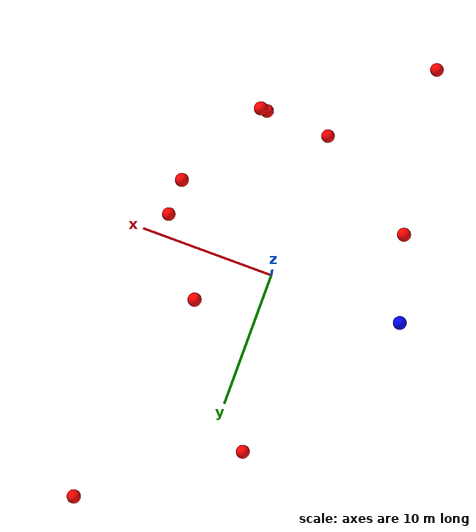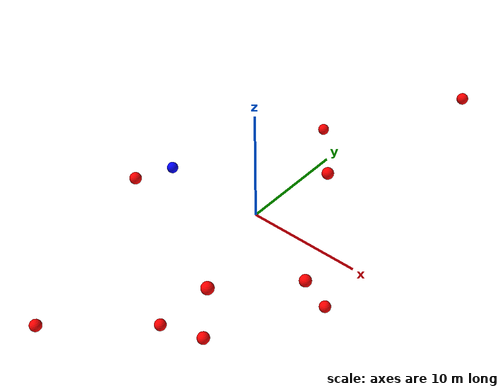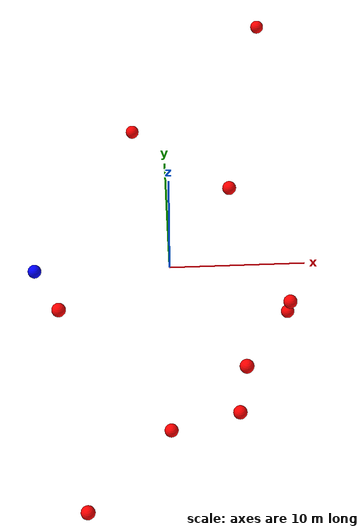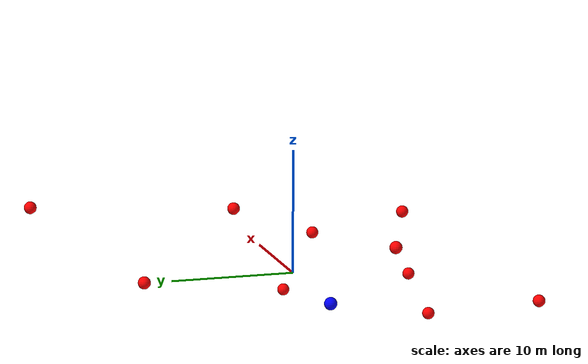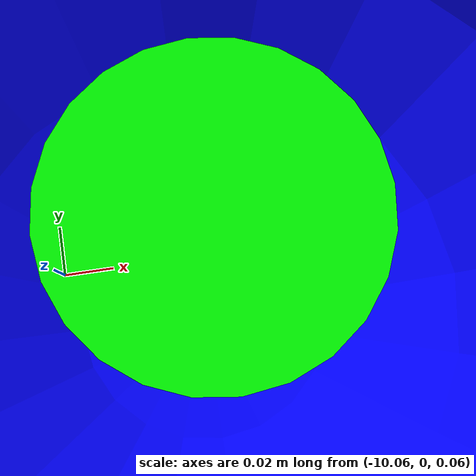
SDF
<?xml version="1.0" ?>
<sdf version="1.8">
    <world name="3d_world">
        <physics name="1ms" type="ode">
            <max_step_size>0.001</max_step_size>
            <real_time_factor>1.0</real_time_factor>
            <real_time_update_rate>1000.0</real_time_update_rate>
        </physics>
        <gravity>0 0 0</gravity>

        <plugin
            filename="gz-sim-physics-system"
            name="gz::sim::v8::systems::Physics">
        </plugin>
        <plugin
            filename="libignition-gazebo-user-commands-system.so"
            name="ignition::gazebo::systems::UserCommands">
        </plugin>
        <plugin
            filename="gz-sim-scene-broadcaster-system"
            name="gz::sim::systems::SceneBroadcaster">
        </plugin>
        <plugin
            filename="gz-sim-sensors-system"
            name="gz::sim::systems::Sensors">
            <render_engine>ogre2</render_engine>
        </plugin>

        <light type="directional" name="sun">
            <cast_shadows>true</cast_shadows>
            <pose>0 0 10 0 0 0</pose>
            <diffuse>0.8 0.8 0.8 1</diffuse>
            <specular>0.2 0.2 0.2 1</specular>
            <attenuation>
                <range>1000</range>
                <constant>0.9</constant>
                <linear>0.01</linear>
                <quadratic>0.001</quadratic>
            </attenuation>
            <direction>-0.5 0.1 -0.9</direction>
        </light>

        <!-- AGENTE -->
        <model name='agente' canonical_link='chassis'>
            <pose relative_to='world'>-10.0 0 0.0 0 0 0</pose>
            <link name='chassis'>
                <pose relative_to='__model__'>0.0 0 0.0 0 0 0</pose>
                <inertial>
                    <mass>1.14395</mass>
                    <inertia>
                        <ixx>0.095329</ixx>
                        <ixy>0</ixy>
                        <ixz>0</ixz>
                        <iyy>0.381317</iyy>
                        <iyz>0</iyz>
                        <izz>0.476646</izz>
                    </inertia>
                </inertial>
                <visual name='visual'>
                    <geometry>
                        <sphere>
                            <radius>0.5</radius>
                        </sphere>
                    </geometry>
                    <material>
                        <ambient>0.0 0.0 1.0 1</ambient>
                        <diffuse>0.0 0.0 1.0 1</diffuse>
                        <specular>0.0 0.0 1.0 1</specular>
                    </material>
                </visual>
                <collision name='collision'>
                    <geometry>
                        <sphere>
                            <radius>0.5</radius>
                        </sphere>
                    </geometry>
                </collision>
                <enable_gravity>false</enable_gravity>
            </link>

            <link name='lidar_link'>
                <pose relative_to='chassis'>0.0 0 0.1 0 0 0</pose>
                <inertial>
                    <mass>0.1</mass>
                    <inertia>
                        <ixx>0.000166667</ixx>
                        <iyy>0.000166667</iyy>
                        <izz>0.000166667</izz>
                    </inertia>
                </inertial>
                <collision name='collision'>
                    <geometry>
                        <cylinder>
                            <radius>0.05</radius>
                            <length>0.1</length>
                        </cylinder>
                    </geometry>
                </collision>
                <visual name='visual'>
                    <geometry>
                        <cylinder>
                            <radius>0.05</radius>
                            <length>0.1</length>
                        </cylinder>
                    </geometry>
                    <material>
                        <ambient>0.0 1.0 0.0 1</ambient>
                        <diffuse>0.0 1.0 0.0 1</diffuse>
                        <specular>0.0 1.0 0.0 1</specular>
                    </material>
                </visual>
                <sensor name="lidar" type="gpu_lidar">
                    <topic>scan</topic>
                    <update_rate>10</update_rate>
                    <lidar>
                        <scan>
                            <horizontal>
                                <samples>5000</samples>
                                <resolution>1</resolution>
                                <min_angle>-3.14159</min_angle>
                                <max_angle>3.14159</max_angle>
                            </horizontal>
                        </scan>
                        <range>
                            <min>0.1</min>
                            <max>10.0</max>
                            <resolution>0.01</resolution>
                        </range>
                    </lidar>
                    <visualize>true</visualize>
                    <always_on>true</always_on>
                    <update_rate>10</update_rate>
                    <pose_frame>lidar</pose_frame>
                </sensor>
                <enable_gravity>false</enable_gravity>
            </link>

            <joint name="lidar_joint" type="fixed">
                <parent>chassis</parent>
                <child>lidar_link</child>
            </joint>

            <plugin
                filename="ignition-gazebo-joint-state-publisher-system"
                name="ignition::gazebo::systems::JointStatePublisher">
            </plugin>
            <plugin
                filename="ignition-gazebo-odometry-publisher-system"
                name="ignition::gazebo::systems::OdometryPublisher">
                <dimensions>3</dimensions>
            </plugin>
            <plugin
                filename="ignition-gazebo-velocity-control-system"
                name="ignition::gazebo::systems::VelocityControl">
                <initial_linear>0.0 0 0</initial_linear>
                <initial_angular>0 0 0.0</initial_angular>
            </plugin>
            <plugin
                filename="libignition-gazebo-pose-publisher-system.so"
                name="ignition::gazebo::systems::PosePublisher">
                <topic>/agente/pose</topic>
                <frame_id>agente</frame_id>
                <update_rate>30</update_rate>
            </plugin>
        </model>

        <!-- OBSTACLE 1 -->
        <model name='obstacle_1' canonical_link='obstacle'>
            <static>false</static>
            <pose relative_to='world'>8.54 -4.23 1.14 0 0 0</pose>
            <link name='obstacle'>
                <pose relative_to='__model__'>0.0 0 0.0 0 0 0</pose>
                <visual name='visual'>
                    <geometry>
                        <sphere>
                            <radius>0.50</radius>
                        </sphere>
                    </geometry>
                    <material>
                        <ambient>1.0 0.0 0.0 1</ambient>
                        <diffuse>1.0 0.0 0.0 1</diffuse>
                        <specular>1.0 0.0 0.0 1</specular>
                    </material>
                </visual>
                <collision name='collision'>
                    <geometry>
                        <sphere>
                            <radius>0.50</radius>
                        </sphere>
                    </geometry>
                </collision>
                <enable_gravity>false</enable_gravity>
            </link>

            <plugin
                filename="ignition-gazebo-velocity-control-system"
                name="ignition::gazebo::systems::VelocityControl">
                <initial_linear>-1.86 0.70 -0.19</initial_linear>
                <initial_angular>0 0 0</initial_angular>
            </plugin>

            <plugin
                filename="ignition-gazebo-odometry-publisher-system"
                name="ignition::gazebo::systems::OdometryPublisher">
                <dimensions>3</dimensions>
            </plugin>
        </model>

        <!-- OBSTACLE 2 -->
        <model name='obstacle_2' canonical_link='obstacle'>
            <static>false</static>
            <pose relative_to='world'>7.68 19.76 4.94 0 0 0</pose>
            <link name='obstacle'>
                <pose relative_to='__model__'>0.0 0 0.0 0 0 0</pose>
                <visual name='visual'>
                    <geometry>
                        <sphere>
                            <radius>0.50</radius>
                        </sphere>
                    </geometry>
                    <material>
                        <ambient>1.0 0.0 0.0 1</ambient>
                        <diffuse>1.0 0.0 0.0 1</diffuse>
                        <specular>1.0 0.0 0.0 1</specular>
                    </material>
                </visual>
                <collision name='collision'>
                    <geometry>
                        <sphere>
                            <radius>0.50</radius>
                        </sphere>
                    </geometry>
                </collision>
                <enable_gravity>false</enable_gravity>
            </link>

            <plugin
                filename="ignition-gazebo-velocity-control-system"
                name="ignition::gazebo::systems::VelocityControl">
                <initial_linear>-0.69 -1.82 -0.46</initial_linear>
                <initial_angular>0 0 0</initial_angular>
            </plugin>

            <plugin
                filename="ignition-gazebo-odometry-publisher-system"
                name="ignition::gazebo::systems::OdometryPublisher">
                <dimensions>3</dimensions>
            </plugin>
        </model>

        <!-- OBSTACLE 3 -->
        <model name='obstacle_3' canonical_link='obstacle'>
            <static>false</static>
            <pose relative_to='world'>-7.93 -5.92 3.51 0 0 0</pose>
            <link name='obstacle'>
                <pose relative_to='__model__'>0.0 0 0.0 0 0 0</pose>
                <visual name='visual'>
                    <geometry>
                        <sphere>
                            <radius>0.50</radius>
                        </sphere>
                    </geometry>
                    <material>
                        <ambient>1.0 0.0 0.0 1</ambient>
                        <diffuse>1.0 0.0 0.0 1</diffuse>
                        <specular>1.0 0.0 0.0 1</specular>
                    </material>
                </visual>
                <collision name='collision'>
                    <geometry>
                        <sphere>
                            <radius>0.50</radius>
                        </sphere>
                    </geometry>
                </collision>
                <enable_gravity>false</enable_gravity>
            </link>

            <plugin
                filename="ignition-gazebo-velocity-control-system"
                name="ignition::gazebo::systems::VelocityControl">
                <initial_linear>1.77 0.80 -0.48</initial_linear>
                <initial_angular>0 0 0</initial_angular>
            </plugin>

            <plugin
                filename="ignition-gazebo-odometry-publisher-system"
                name="ignition::gazebo::systems::OdometryPublisher">
                <dimensions>3</dimensions>
            </plugin>
        </model>

        <!-- OBSTACLE 4 -->
        <model name='obstacle_4' canonical_link='obstacle'>
            <static>false</static>
            <pose relative_to='world'>4.52 3.69 4.54 0 0 0</pose>
            <link name='obstacle'>
                <pose relative_to='__model__'>0.0 0 0.0 0 0 0</pose>
                <visual name='visual'>
                    <geometry>
                        <sphere>
                            <radius>0.50</radius>
                        </sphere>
                    </geometry>
                    <material>
                        <ambient>1.0 0.0 0.0 1</ambient>
                        <diffuse>1.0 0.0 0.0 1</diffuse>
                        <specular>1.0 0.0 0.0 1</specular>
                    </material>
                </visual>
                <collision name='collision'>
                    <geometry>
                        <sphere>
                            <radius>0.50</radius>
                        </sphere>
                    </geometry>
                </collision>
                <enable_gravity>false</enable_gravity>
            </link>

            <plugin
                filename="ignition-gazebo-velocity-control-system"
                name="ignition::gazebo::systems::VelocityControl">
                <initial_linear>-1.54 -0.80 -0.99</initial_linear>
                <initial_angular>0 0 0</initial_angular>
            </plugin>

            <plugin
                filename="ignition-gazebo-odometry-publisher-system"
                name="ignition::gazebo::systems::OdometryPublisher">
                <dimensions>3</dimensions>
            </plugin>
        </model>

        <!-- OBSTACLE 5 -->
        <model name='obstacle_5' canonical_link='obstacle'>
            <static>false</static>
            <pose relative_to='world'>8.84 -1.78 -3.70 0 0 0</pose>
            <link name='obstacle'>
                <pose relative_to='__model__'>0.0 0 0.0 0 0 0</pose>
                <visual name='visual'>
                    <geometry>
                        <sphere>
                            <radius>0.50</radius>
                        </sphere>
                    </geometry>
                    <material>
                        <ambient>1.0 0.0 0.0 1</ambient>
                        <diffuse>1.0 0.0 0.0 1</diffuse>
                        <specular>1.0 0.0 0.0 1</specular>
                    </material>
                </visual>
                <collision name='collision'>
                    <geometry>
                        <sphere>
                            <radius>0.50</radius>
                        </sphere>
                    </geometry>
                </collision>
                <enable_gravity>false</enable_gravity>
            </link>

            <plugin
                filename="ignition-gazebo-velocity-control-system"
                name="ignition::gazebo::systems::VelocityControl">
                <initial_linear>-1.91 0.26 0.55</initial_linear>
                <initial_angular>0 0 0</initial_angular>
            </plugin>

            <plugin
                filename="ignition-gazebo-odometry-publisher-system"
                name="ignition::gazebo::systems::OdometryPublisher">
                <dimensions>3</dimensions>
            </plugin>
        </model>

        <!-- OBSTACLE 6 -->
        <model name='obstacle_6' canonical_link='obstacle'>
            <static>false</static>
            <pose relative_to='world'>-6.20 -18.69 -2.14 0 0 0</pose>
            <link name='obstacle'>
                <pose relative_to='__model__'>0.0 0 0.0 0 0 0</pose>
                <visual name='visual'>
                    <geometry>
                        <sphere>
                            <radius>0.50</radius>
                        </sphere>
                    </geometry>
                    <material>
                        <ambient>1.0 0.0 0.0 1</ambient>
                        <diffuse>1.0 0.0 0.0 1</diffuse>
                        <specular>1.0 0.0 0.0 1</specular>
                    </material>
                </visual>
                <collision name='collision'>
                    <geometry>
                        <sphere>
                            <radius>0.50</radius>
                        </sphere>
                    </geometry>
                </collision>
                <enable_gravity>false</enable_gravity>
            </link>

            <plugin
                filename="ignition-gazebo-velocity-control-system"
                name="ignition::gazebo::systems::VelocityControl">
                <initial_linear>0.46 1.93 0.22</initial_linear>
                <initial_angular>0 0 0</initial_angular>
            </plugin>

            <plugin
                filename="ignition-gazebo-odometry-publisher-system"
                name="ignition::gazebo::systems::OdometryPublisher">
                <dimensions>3</dimensions>
            </plugin>
        </model>

        <!-- OBSTACLE 7 -->
        <model name='obstacle_7' canonical_link='obstacle'>
            <static>false</static>
            <pose relative_to='world'>-0.30 -11.45 -4.14 0 0 0</pose>
            <link name='obstacle'>
                <pose relative_to='__model__'>0.0 0 0.0 0 0 0</pose>
                <visual name='visual'>
                    <geometry>
                        <sphere>
                            <radius>0.50</radius>
                        </sphere>
                    </geometry>
                    <material>
                        <ambient>1.0 0.0 0.0 1</ambient>
                        <diffuse>1.0 0.0 0.0 1</diffuse>
                        <specular>1.0 0.0 0.0 1</specular>
                    </material>
                </visual>
                <collision name='collision'>
                    <geometry>
                        <sphere>
                            <radius>0.50</radius>
                        </sphere>
                    </geometry>
                </collision>
                <enable_gravity>false</enable_gravity>
            </link>

            <plugin
                filename="ignition-gazebo-velocity-control-system"
                name="ignition::gazebo::systems::VelocityControl">
                <initial_linear>0.39 1.85 0.67</initial_linear>
                <initial_angular>0 0 0</initial_angular>
            </plugin>

            <plugin
                filename="ignition-gazebo-odometry-publisher-system"
                name="ignition::gazebo::systems::OdometryPublisher">
                <dimensions>3</dimensions>
            </plugin>
        </model>

        <!-- OBSTACLE 8 -->
        <model name='obstacle_8' canonical_link='obstacle'>
            <static>false</static>
            <pose relative_to='world'>4.57 -11.42 -1.97 0 0 0</pose>
            <link name='obstacle'>
                <pose relative_to='__model__'>0.0 0 0.0 0 0 0</pose>
                <visual name='visual'>
                    <geometry>
                        <sphere>
                            <radius>0.50</radius>
                        </sphere>
                    </geometry>
                    <material>
                        <ambient>1.0 0.0 0.0 1</ambient>
                        <diffuse>1.0 0.0 0.0 1</diffuse>
                        <specular>1.0 0.0 0.0 1</specular>
                    </material>
                </visual>
                <collision name='collision'>
                    <geometry>
                        <sphere>
                            <radius>0.50</radius>
                        </sphere>
                    </geometry>
                </collision>
                <enable_gravity>false</enable_gravity>
            </link>

            <plugin
                filename="ignition-gazebo-velocity-control-system"
                name="ignition::gazebo::systems::VelocityControl">
                <initial_linear>-0.91 1.76 0.30</initial_linear>
                <initial_angular>0 0 0</initial_angular>
            </plugin>

            <plugin
                filename="ignition-gazebo-odometry-publisher-system"
                name="ignition::gazebo::systems::OdometryPublisher">
                <dimensions>3</dimensions>
            </plugin>
        </model>

        <!-- OBSTACLE 9 -->
        <model name='obstacle_9' canonical_link='obstacle'>
            <static>false</static>
            <pose relative_to='world'>-2.49 12.78 0.71 0 0 0</pose>
            <link name='obstacle'>
                <pose relative_to='__model__'>0.0 0 0.0 0 0 0</pose>
                <visual name='visual'>
                    <geometry>
                        <sphere>
                            <radius>0.50</radius>
                        </sphere>
                    </geometry>
                    <material>
                        <ambient>1.0 0.0 0.0 1</ambient>
                        <diffuse>1.0 0.0 0.0 1</diffuse>
                        <specular>1.0 0.0 0.0 1</specular>
                    </material>
                </visual>
                <collision name='collision'>
                    <geometry>
                        <sphere>
                            <radius>0.50</radius>
                        </sphere>
                    </geometry>
                </collision>
                <enable_gravity>false</enable_gravity>
            </link>

            <plugin
                filename="ignition-gazebo-velocity-control-system"
                name="ignition::gazebo::systems::VelocityControl">
                <initial_linear>0.43 -1.95 -0.11</initial_linear>
                <initial_angular>0 0 0</initial_angular>
            </plugin>

            <plugin
                filename="ignition-gazebo-odometry-publisher-system"
                name="ignition::gazebo::systems::OdometryPublisher">
                <dimensions>3</dimensions>
            </plugin>
        </model>

        <!-- OBSTACLE 10 -->
        <model name='obstacle_10' canonical_link='obstacle'>
            <static>false</static>
            <pose relative_to='world'>4.88 -10.91 3.30 0 0 0</pose>
            <link name='obstacle'>
                <pose relative_to='__model__'>0.0 0 0.0 0 0 0</pose>
                <visual name='visual'>
                    <geometry>
                        <sphere>
                            <radius>0.50</radius>
                        </sphere>
                    </geometry>
                    <material>
                        <ambient>1.0 0.0 0.0 1</ambient>
                        <diffuse>1.0 0.0 0.0 1</diffuse>
                        <specular>1.0 0.0 0.0 1</specular>
                    </material>
                </visual>
                <collision name='collision'>
                    <geometry>
                        <sphere>
                            <radius>0.50</radius>
                        </sphere>
                    </geometry>
                </collision>
                <enable_gravity>false</enable_gravity>
            </link>

            <plugin
                filename="ignition-gazebo-velocity-control-system"
                name="ignition::gazebo::systems::VelocityControl">
                <initial_linear>0.26 1.64 -0.50</initial_linear>
                <initial_angular>0 0 0</initial_angular>
            </plugin>

            <plugin
                filename="ignition-gazebo-odometry-publisher-system"
                name="ignition::gazebo::systems::OdometryPublisher">
                <dimensions>3</dimensions>
            </plugin>
        </model>

    </world>
</sdf>
